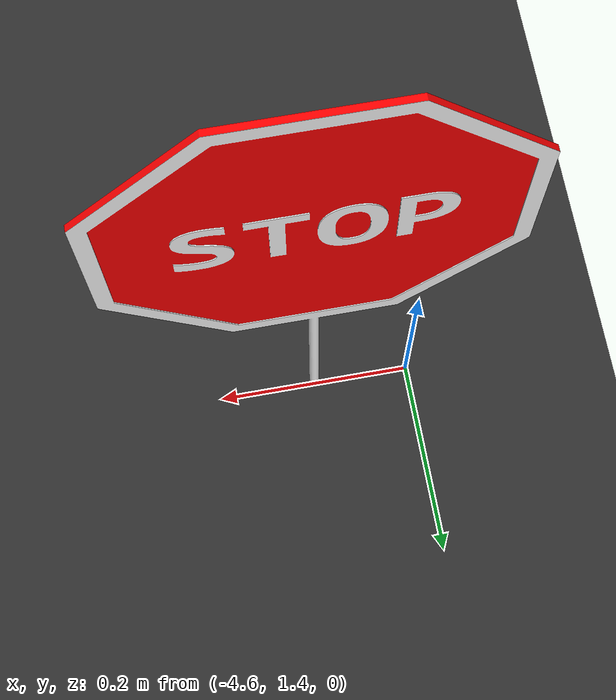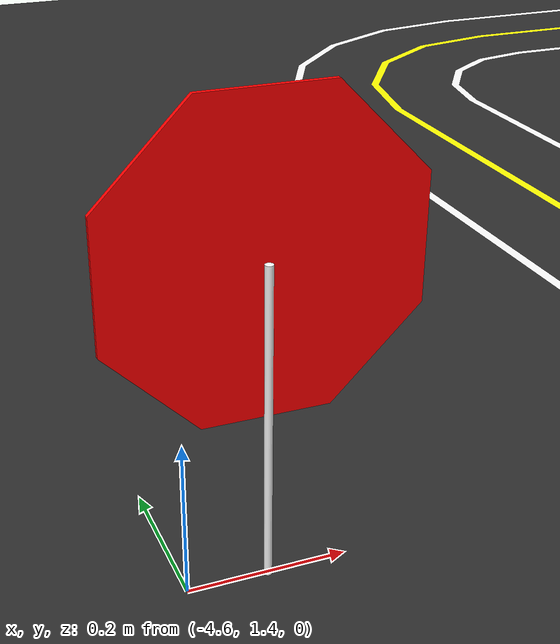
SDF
<?xml version="1.0" ?>
<sdf version="1.11">
  <world name="drive_track">
    <plugin name="gz::sim::systems::Physics" filename="gz-sim-physics-system" />
    <plugin name="gz::sim::systems::UserCommands" filename="gz-sim-user-commands-system" />
    <plugin name="gz::sim::systems::SceneBroadcaster" filename="gz-sim-scene-broadcaster-system" />
    <plugin name="gz::sim::systems::Contact" filename="gz-sim-contact-system" />

    <physics name="1ms" type="ignored">
      <max_step_size>0.003</max_step_size>
      <real_time_factor>1.0</real_time_factor>
    </physics>

    <light name='sun' type='directional'>
        <cast_shadows>1</cast_shadows>
        <pose>0 0 10 0 -0 0</pose>
        <diffuse>0.8 0.8 0.8 1</diffuse>
        <specular>0.2 0.2 0.2 1</specular>
        <attenuation>
            <range>1000</range>
            <constant>0.90000000000000002</constant>
            <linear>0.01</linear>
            <quadratic>0.001</quadratic>
        </attenuation>
        <direction>-0.5 0.1 -0.9</direction>
        <spot>
            <inner_angle>0</inner_angle>
            <outer_angle>0</outer_angle>
            <falloff>0</falloff>
        </spot>
    </light>
    <gravity>0 0 -9.8</gravity>
    <magnetic_field>6e-06 2.3e-05 -4.2e-05</magnetic_field>
    <atmosphere type='adiabatic' />
    <scene>
        <ambient>0.4 0.4 0.4 1</ambient>
        <background>0.7 0.7 0.7 1</background>
        <shadows>1</shadows>
    </scene>

    <model name="field">
      <pose>0 0 0 0 0 0</pose>
      <static>true</static>
      <link name="field_link">
        <collision name="collision">
          <geometry>
            <!-- Collision mesh -->
            <mesh>
              <uri>/data/auto_driver_car/src/auto_drive_car/auto_drive/world/field1.dae</uri>
            </mesh>
          </geometry>
        </collision>
        <visual name="visual">
          <geometry>
            <!-- Visual mesh -->
            <mesh>
              <uri>/data/auto_driver_car/src/auto_drive_car/auto_drive/world/field1.dae</uri>
            </mesh>
          </geometry>
        </visual>
      </link>
    </model>

    <model name="stop_sign">
      <pose>-4.5 1.5 0.3 0 1.5738 0</pose>
      <static>true</static>
      <link name="field_link">
        <collision name="collision">
          <geometry>
            <!-- Collision mesh -->
            <mesh>
              <uri>/data/auto_driver_car/src/auto_drive_car/auto_drive/world/field1.dae</uri>
            </mesh>
          </geometry>
        </collision>
        <visual name="visual">
          <geometry>
            <!-- Visual mesh -->
            <mesh>
              <uri>/data/auto_driver_car/src/auto_drive_car/auto_drive/world/stop.dae</uri>
            </mesh>
          </geometry>
        </visual>
      </link>
    </model>
  </world>
</sdf>
